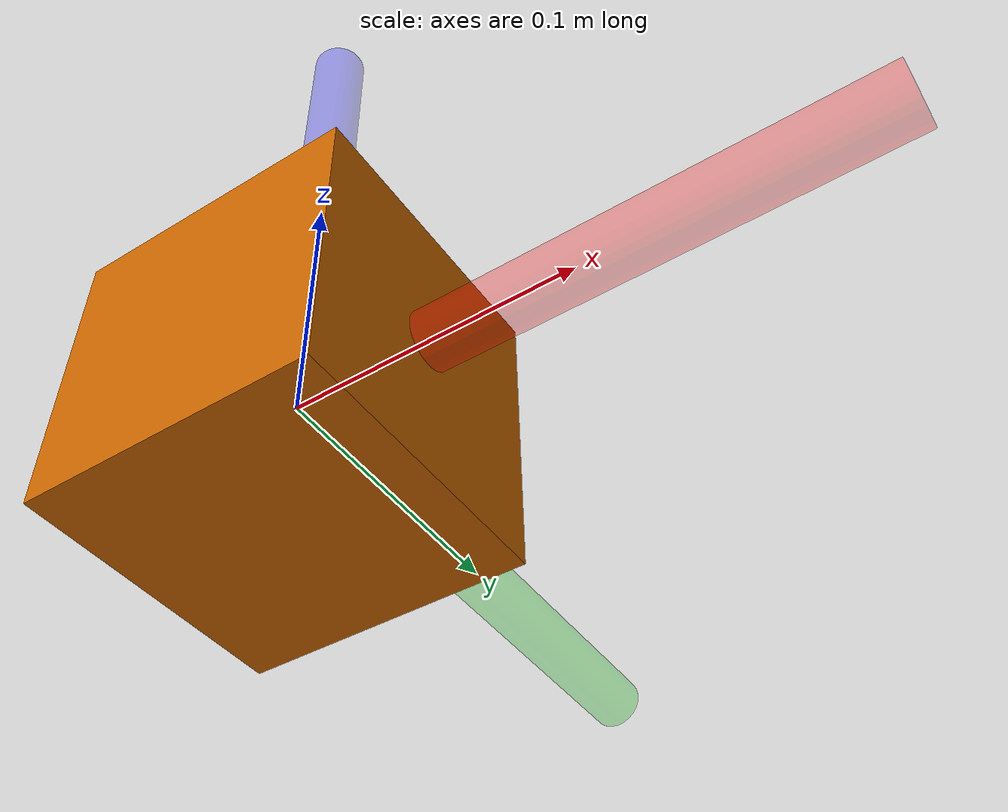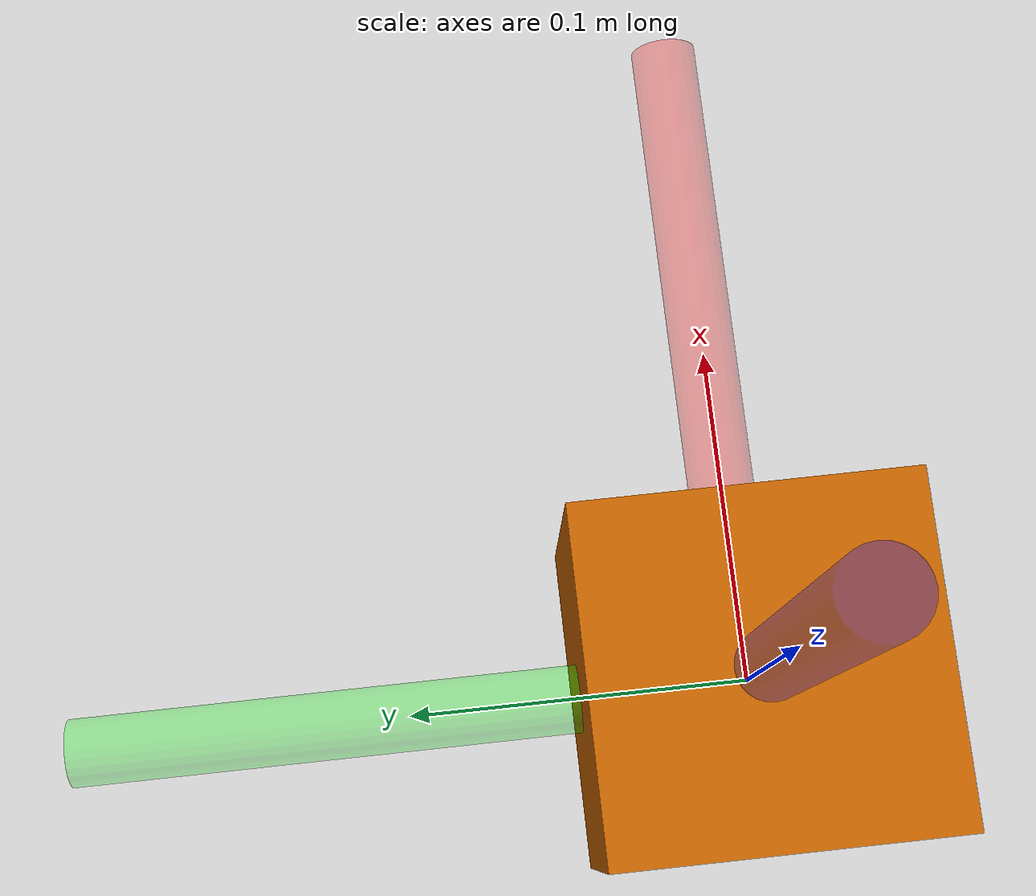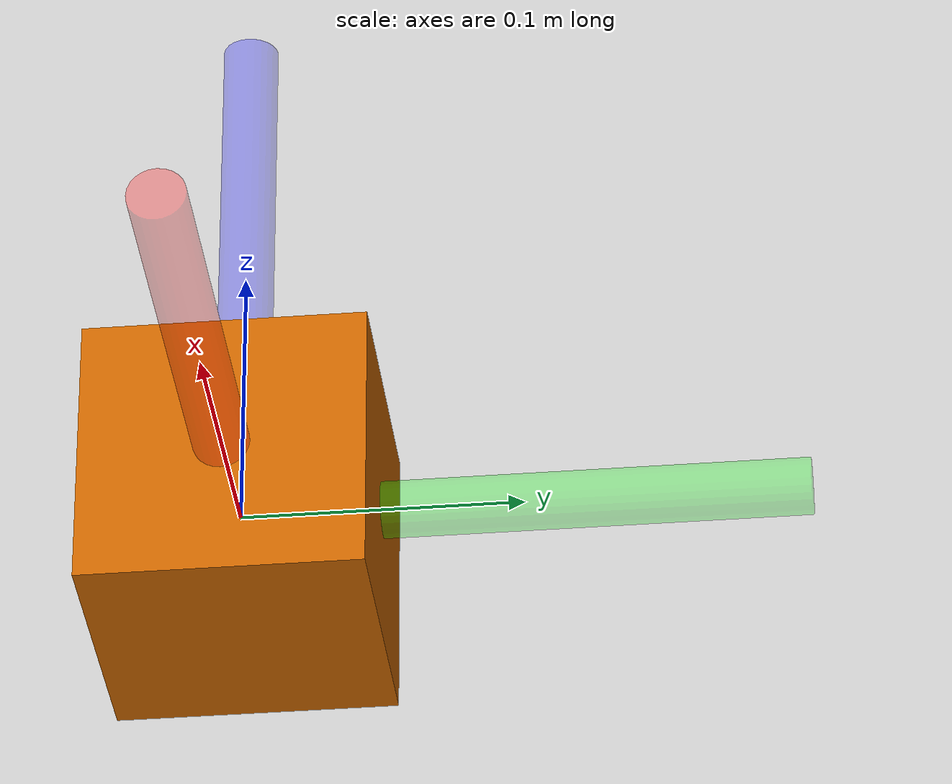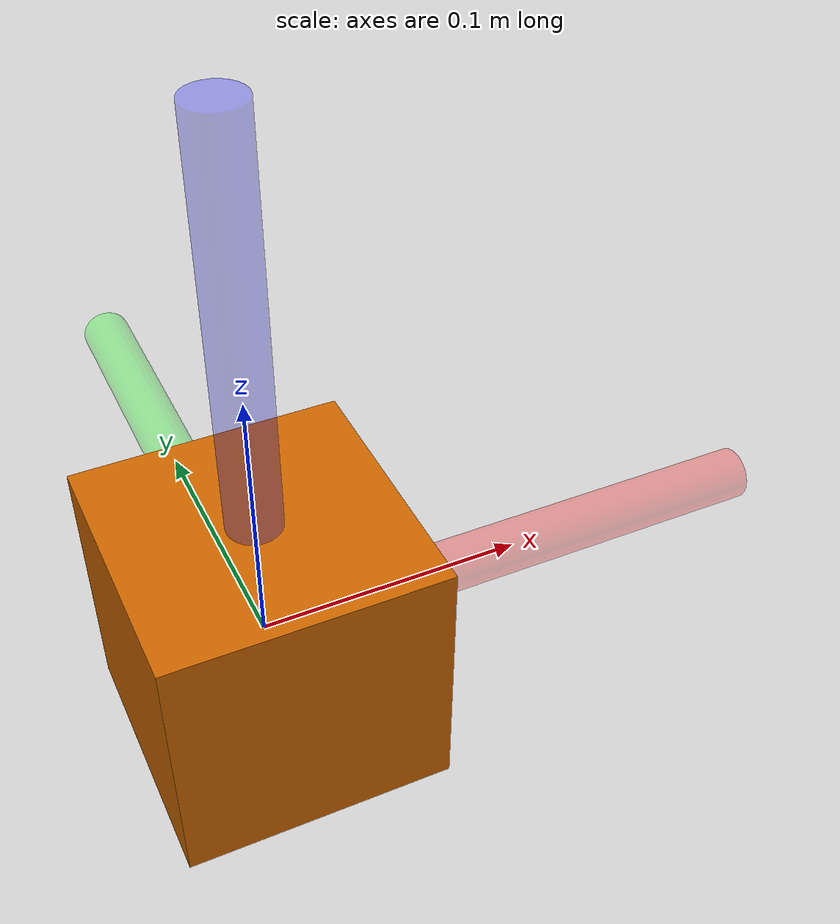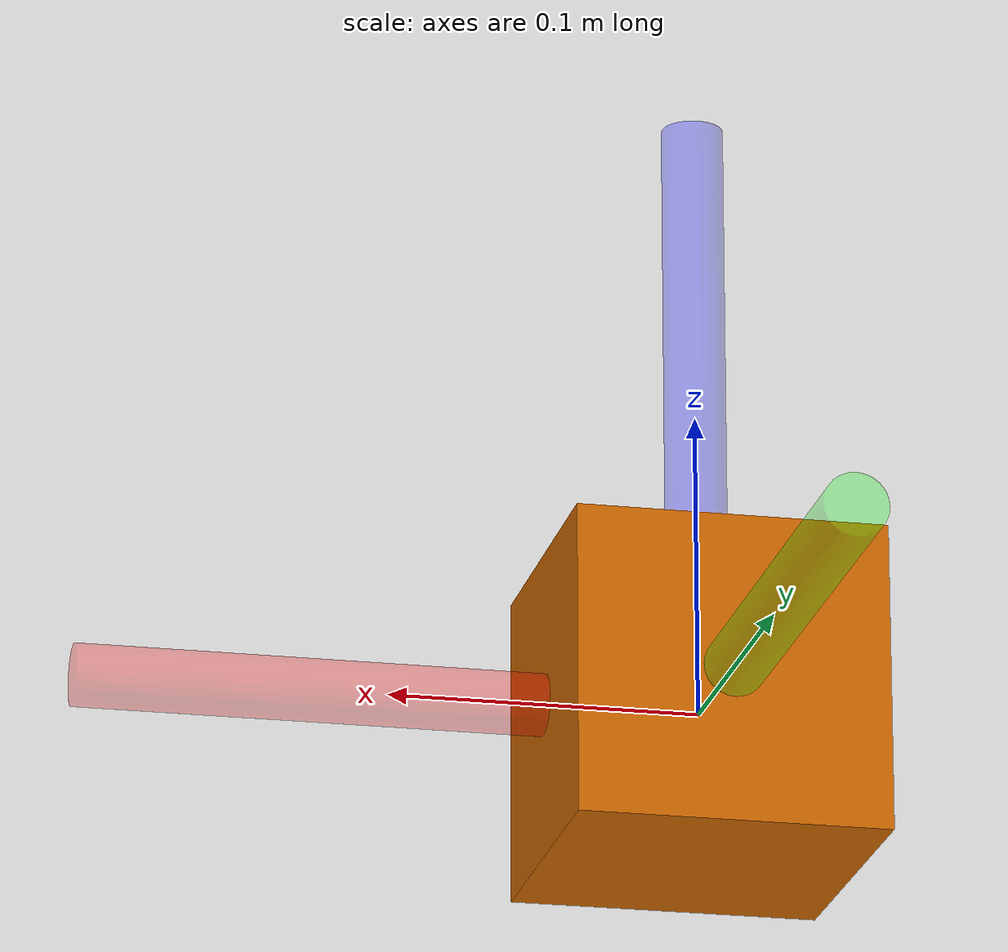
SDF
<?xml version="1.0"?>
<sdf version='1.7'>
  <model name="cube">
      <!-- Cube -->
      <link name="cube">
        <pose>0 0 0 0 0 0</pose>
        <inertial>
          <mass>0.05</mass>
          <inertia>
            <ixx>0.000083</ixx>
            <iyy>0.000083</iyy>
            <izz>0.000083</izz>
            <ixy>0.0</ixy>
            <ixz>0.0</ixz>
            <iyz>0.0</iyz>
          </inertia>
        </inertial>

        <visual name="cube_visual">
          <geometry><box><size>0.1 0.1 0.1</size></box></geometry>
          <material><diffuse>0.8 0.4 0.0 1</diffuse></material>
        </visual>
         <visual name="z_axis">
          <pose>0 0 0.1 0 0 0</pose> <!-- relative to cube frame -->
          <geometry>
            <cylinder>
              <radius>0.01</radius>
              <length>0.2</length>
            </cylinder>
          </geometry>
          <material>
            <ambient>0 0 1 0.3</ambient>
            <diffuse>0 0 1 0.3</diffuse>
          </material>
        </visual>

        <!-- Y-axis -->
        <visual name="x_axis">
          <pose>0.1 0 0 0 1.57079632679 0 </pose> <!-- rotate 90 deg around Z -->
          <geometry>
            <cylinder>
              <radius>0.01</radius>
              <length>0.2</length>
            </cylinder>
          </geometry>
          <material>
            <ambient>1 0 0 0.3</ambient>
            <diffuse>1 0 0 0.3</diffuse>
          </material>
        </visual>

        <!-- Z-axis -->
        <visual name="y_axis">
          <pose>0 0.1 0 1.57079632679 0 0</pose> <!-- rotate 90 deg around Y -->
          <geometry>
            <cylinder>
              <radius>0.01</radius>
              <length>0.2</length>
            </cylinder>
          </geometry>
          <material>
            <ambient>0 1 0 0.3</ambient>
            <diffuse>0 1 0 0.3</diffuse>
          </material>
        </visual>

         <collision name="cube">
          <pose>0 0 0 0 0 0</pose>
          <geometry>
            <box><size>0.1 0.1 0.1</size></box>
          </geometry>
        <drake:proximity_properties>

            <drake:point_contact_stiffness>50000.0</drake:point_contact_stiffness>
            <drake:hunt_crossley_dissipation>10.0</drake:hunt_crossley_dissipation>
          <drake:mu_static>0.25</drake:mu_static>
          <drake:mu_dynamic>0.25</drake:mu_dynamic>
        </drake:proximity_properties>

        </collision>
        <collision name="corner_1">
          <pose>0.05 0.05 -0.05 0 0 0</pose>
          <geometry>
            <sphere>
              <radius>0.002</radius>
            </sphere>
          </geometry>
          <drake:proximity_properties>

            <drake:point_contact_stiffness>50000.0</drake:point_contact_stiffness>
            <drake:hunt_crossley_dissipation>10.0</drake:hunt_crossley_dissipation>
            <drake:mu_static>0.25</drake:mu_static>
          <drake:mu_dynamic>0.25</drake:mu_dynamic>
          </drake:proximity_properties>

        </collision>
        <collision name="corner_2">
          <pose>-0.05 0.05 -0.05 0 0 0</pose>
          <geometry>
            <sphere>
              <radius>0.002</radius>
            </sphere>
          </geometry>
          <drake:proximity_properties>

            <drake:point_contact_stiffness>50000.0</drake:point_contact_stiffness>
            <drake:hunt_crossley_dissipation>10.0</drake:hunt_crossley_dissipation>
            <drake:mu_static>0.25</drake:mu_static>
            <drake:mu_dynamic>0.25</drake:mu_dynamic>
          </drake:proximity_properties>
        </collision>
        <collision name="corner_3">
          <pose>0.05 -0.05 -0.05 0 0 0</pose>
          <geometry>
            <sphere>
              <radius>0.002</radius>
            </sphere>
          </geometry>
          <drake:proximity_properties>

            <drake:point_contact_stiffness>50000.0</drake:point_contact_stiffness>
            <drake:hunt_crossley_dissipation>10.0</drake:hunt_crossley_dissipation>
            <drake:mu_static>0.25</drake:mu_static>
            <drake:mu_dynamic>0.25</drake:mu_dynamic>
          </drake:proximity_properties>
        </collision>
        <collision name="corner_4">
          <pose>-0.05 -0.05 -0.05 0 0 0</pose>
          <geometry>
            <sphere>
              <radius>0.002</radius>
            </sphere>
          </geometry>
          <drake:proximity_properties>

            <drake:point_contact_stiffness>50000.0</drake:point_contact_stiffness>
            <drake:hunt_crossley_dissipation>10.0</drake:hunt_crossley_dissipation>
            <drake:mu_static>0.25</drake:mu_static>
            <drake:mu_dynamic>0.25</drake:mu_dynamic>
          </drake:proximity_properties>
        </collision>
        <collision name="corner_5">
          <pose>0.05 0.05 0.05 0 0 0</pose>
          <geometry>
            <sphere>
              <radius>0.002</radius>
            </sphere>
          </geometry>
          <drake:proximity_properties>

            <drake:point_contact_stiffness>50000.0</drake:point_contact_stiffness>
            <drake:hunt_crossley_dissipation>10.0</drake:hunt_crossley_dissipation>
            <drake:mu_static>0.25</drake:mu_static>
            <drake:mu_dynamic>0.25</drake:mu_dynamic>
          </drake:proximity_properties>
        </collision>
        <collision name="corner_6">
          <pose>-0.05 0.05 0.05 0 0 0</pose>
          <geometry>
            <sphere>
              <radius>0.002</radius>
            </sphere>
          </geometry>
          <drake:proximity_properties>

            <drake:point_contact_stiffness>50000.0</drake:point_contact_stiffness>
            <drake:hunt_crossley_dissipation>10.0</drake:hunt_crossley_dissipation>
            <drake:mu_static>0.25</drake:mu_static>
            <drake:mu_dynamic>0.25</drake:mu_dynamic>
          </drake:proximity_properties>
        </collision>
        <collision name="corner_7">
          <pose>0.05 -0.05 0.05 0 0 0</pose>
          <geometry>
            <sphere>
              <radius>0.002</radius>
            </sphere>
          </geometry>
          <drake:proximity_properties>

            <drake:point_contact_stiffness>50000.0</drake:point_contact_stiffness>
            <drake:hunt_crossley_dissipation>10.0</drake:hunt_crossley_dissipation>
            <drake:mu_static>0.25</drake:mu_static>
            <drake:mu_dynamic>0.25</drake:mu_dynamic>
          </drake:proximity_properties>
        </collision>
        <collision name="corner_8">
          <pose>-0.05 -0.05 0.05 0 0 0</pose>
          <geometry>
            <sphere>
              <radius>0.002</radius>
            </sphere>
          </geometry>
          <drake:proximity_properties>

            <drake:point_contact_stiffness>50000.0</drake:point_contact_stiffness>
            <drake:hunt_crossley_dissipation>10.0</drake:hunt_crossley_dissipation>
            <drake:mu_static>0.25</drake:mu_static>
            <drake:mu_dynamic>0.25</drake:mu_dynamic>
          </drake:proximity_properties>
        </collision>

      </link>
    </model>
</sdf>
